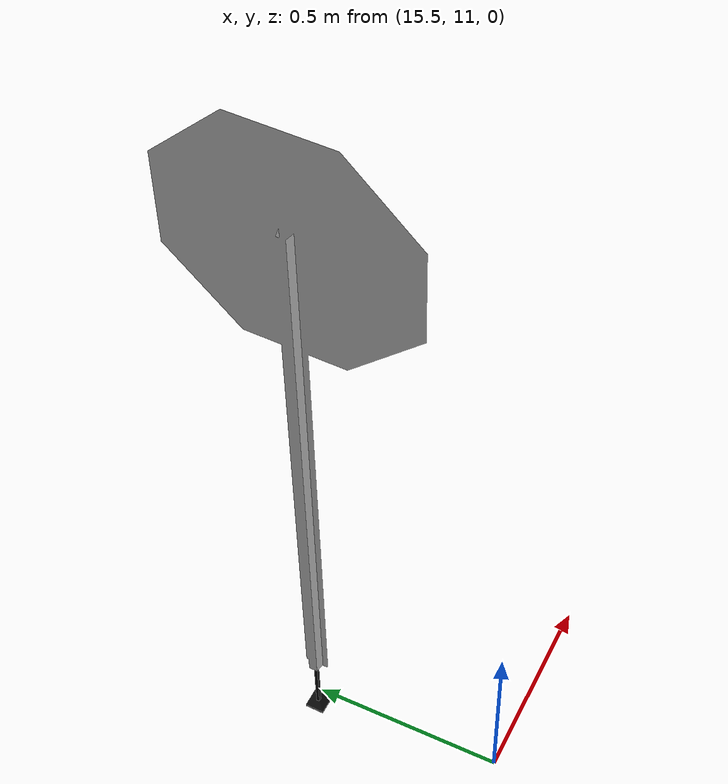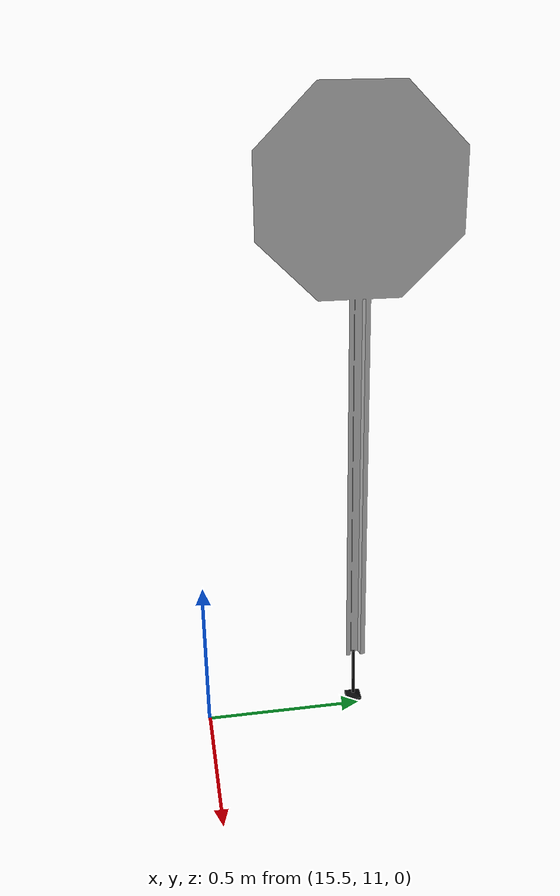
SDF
<sdf version="1.7">
 <world name="bfmc_official">
  <model name="stop_sign_3">
   <static>1</static>
   <link name="sign_leg">
    <inertial>
     <mass>0.5</mass>
     <inertia>
      <ixx>0.166667</ixx>
      <ixy>0</ixy>
      <ixz>0</ixz>
      <iyy>0.166667</iyy>
      <iyz>0</iyz>
      <izz>0.166667</izz>
     </inertia>
     <pose>0 0 -0.078998 0 -0 0</pose>
    </inertial>
    <pose>0.002193 -0.000682 -0.07606 0 -0 0</pose>
    <self_collide>1</self_collide>
    <enable_wind>1</enable_wind>
    <visual name="visual">
     <geometry><mesh><uri>model://subassembly/meshes/sign_leg.dae</uri><scale>1 1 1</scale></mesh></geometry>
    </visual>
    <collision name="collision">
     <geometry><mesh><uri>model://subassembly/meshes/sign_leg.dae</uri><scale>1 1 1</scale></mesh></geometry>
     <surface>
      <friction>
       <ode><mu>0.46</mu><mu2>1</mu2><fdir1>0 0 0</fdir1><slip1>0</slip1><slip2>0</slip2></ode>
       <torsional>
        <coefficient>1</coefficient>
        <patch_radius>0</patch_radius>
        <surface_radius>0</surface_radius>
        <use_patch_radius>1</use_patch_radius>
        <ode><slip>0</slip></ode>
       </torsional>
      </friction>
      <bounce><restitution_coefficient>0</restitution_coefficient><threshold>1e+06</threshold></bounce>
      <contact>
       <collide_without_contact>0</collide_without_contact>
       <collide_without_contact_bitmask>1</collide_without_contact_bitmask>
       <collide_bitmask>1</collide_bitmask>
       <ode>
        <soft_cfm>0</soft_cfm>
        <soft_erp>0.2</soft_erp>
        <kp>1e+13</kp>
        <kd>1</kd>
        <max_vel>0.01</max_vel>
        <min_depth>0</min_depth>
       </ode>
       <bullet>
        <split_impulse>1</split_impulse>
        <split_impulse_penetration_threshold>-0.01</split_impulse_penetration_threshold>
        <soft_cfm>0</soft_cfm>
        <soft_erp>0.2</soft_erp>
        <kp>1e+13</kp>
        <kd>1</kd>
       </bullet>
      </contact>
     </surface>
    </collision>
   </link>
   <link name="octagonal_support">
    <inertial>
     <mass>0.022</mass>
     <inertia>
      <ixx>0.166667</ixx>
      <ixy>0</ixy>
      <ixz>0</ixz>
      <iyy>0.166667</iyy>
      <iyz>0</iyz>
      <izz>0.166667</izz>
     </inertia>
    </inertial>
    <pose>-0.002193 0.000682 0.09894 0 -0 3.14159</pose>
    <self_collide>1</self_collide>
    <enable_wind>1</enable_wind>
    <visual name="visual">
     <geometry><mesh><uri>model://stop_sign/meshes/stop_sign.dae</uri><scale>1 1 1</scale></mesh></geometry>
     <material>
      <lighting>1</lighting>
      <script>
       <uri>model://stop_sign/materials/scripts</uri>
       <uri>model://stop_sign/materials/textures</uri>
       <name>STOP_SIGN</name>
      </script>
      <shader type="vertex"><normal_map>__default__</normal_map></shader>
      <ambient>0.3 0.3 0.3 1</ambient>
      <diffuse>0.7 0.7 0.7 1</diffuse>
      <specular>0.01 0.01 0.01 1</specular>
      <emissive>0 0 0 1</emissive>
     </material>
    </visual>
    <collision name="collision">
     <geometry><mesh><uri>model://stop_sign/meshes/stop_sign.dae</uri><scale>1 1 1</scale></mesh></geometry>
     <surface>
      <friction>
       <ode><mu>0.46</mu><mu2>1</mu2><fdir1>0 0 0</fdir1><slip1>0</slip1><slip2>0</slip2></ode>
       <torsional>
        <coefficient>1</coefficient>
        <patch_radius>0</patch_radius>
        <surface_radius>0</surface_radius>
        <use_patch_radius>1</use_patch_radius>
        <ode><slip>0</slip></ode>
       </torsional>
      </friction>
      <bounce><restitution_coefficient>0</restitution_coefficient><threshold>1e+06</threshold></bounce>
      <contact>
       <collide_without_contact>0</collide_without_contact>
       <collide_without_contact_bitmask>1</collide_without_contact_bitmask>
       <collide_bitmask>1</collide_bitmask>
       <ode>
        <soft_cfm>0</soft_cfm>
        <soft_erp>0.2</soft_erp>
        <kp>1e+13</kp>
        <kd>1</kd>
        <max_vel>0.01</max_vel>
        <min_depth>0</min_depth>
       </ode>
       <bullet>
        <split_impulse>1</split_impulse>
        <split_impulse_penetration_threshold>-0.01</split_impulse_penetration_threshold>
        <soft_cfm>0</soft_cfm>
        <soft_erp>0.2</soft_erp>
        <kp>1e+13</kp>
        <kd>1</kd>
       </bullet>
      </contact>
     </surface>
    </collision>
   </link>
   <joint name="support_to_leg_joint" type="fixed">
    <parent>link_0</parent>
    <child>link_1</child>
    <physics>
     <ode><limit><cfm>0</cfm><erp>0.2</erp></limit><suspension><cfm>0</cfm><erp>0.2</erp></suspension></ode>
    </physics>
   </joint>
   <static>1</static>
   <pose>15.4644 11.4924 0.078783 0 0 -1.59355</pose>
  </model>
 </world>
</sdf>
